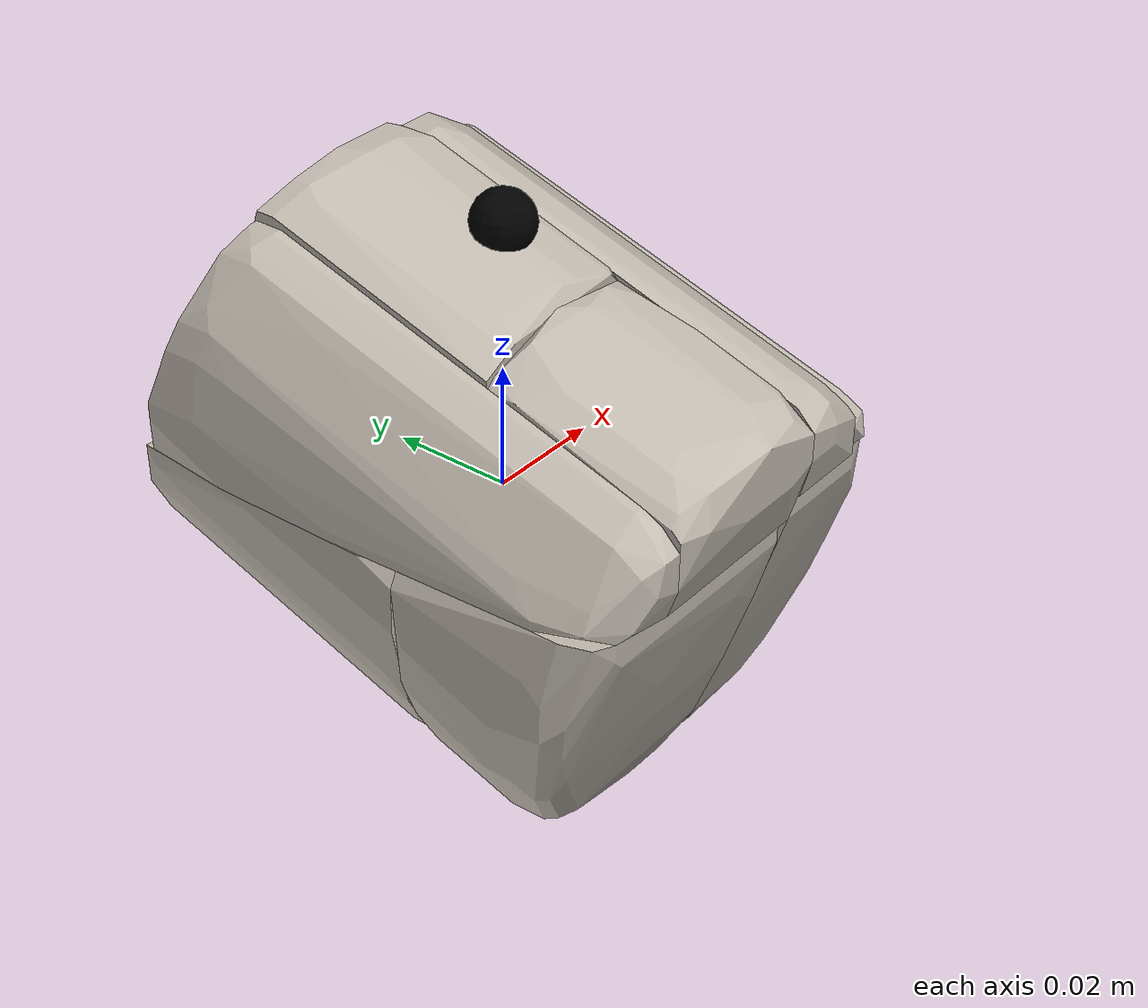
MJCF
<mujoco model="i_cups">
    <compiler angle="radian" />
    <size njmax="500" nconmax="100" />
    <asset>
        <texture type="2d" name="tex-i_cups" file="../textures/i_cups.png" />
        <material name="i_cups" texture="tex-i_cups" texuniform="true" texrepeat="15 15" reflectance="0.7" />
        <mesh name="y22_mug_mesh_1" file="./meshes/Y22_mug_vhacd2_1st.stl" scale="0.7 0.7 0.7"/>
        <mesh name="y22_mug_mesh_2" file="./meshes/Y22_mug_vhacd2_2nd.stl" scale="0.7 0.7 0.7"/>
        <mesh name="y22_mug_mesh_3" file="./meshes/Y22_mug_vhacd2_3rd.stl" scale="0.7 0.7 0.7"/>
        <mesh name="y22_mug_mesh_4" file="./meshes/Y22_mug_vhacd2_4th.stl" scale="0.7 0.7 0.7"/>
        <mesh name="y22_mug_mesh_5" file="./meshes/Y22_mug_vhacd2_5th.stl" scale="0.7 0.7 0.7"/>
        <mesh name="y22_mug_mesh_6" file="./meshes/Y22_mug_vhacd2_6th.stl" scale="0.7 0.7 0.7"/>
        <mesh name="y22_mug_mesh_7" file="./meshes/Y22_mug_vhacd2_7th.stl" scale="0.7 0.7 0.7"/>
        <mesh name="y22_mug_mesh_8" file="./meshes/Y22_mug_vhacd2_8th.stl" scale="0.7 0.7 0.7"/>
        <mesh name="y22_mug_mesh_9" file="./meshes/Y22_mug_vhacd2_9th.stl" scale="0.7 0.7 0.7"/>
        <mesh name="y22_mug_mesh_10" file="./meshes/Y22_mug_vhacd2_10th.stl" scale="0.7 0.7 0.7"/>
        <mesh name="y22_mug_mesh_11" file="./meshes/Y22_mug_vhacd2_11th.stl" scale="0.7 0.7 0.7"/>
        <mesh name="y22_mug_mesh_12" file="./meshes/Y22_mug_vhacd2_12th.stl" scale="0.7 0.7 0.7"/>
        <mesh name="y22_mug_mesh_13" file="./meshes/Y22_mug_vhacd2_13th.stl" scale="0.7 0.7 0.7"/>
        <mesh name="y22_mug_mesh_14" file="./meshes/Y22_mug_vhacd2_14th.stl" scale="0.7 0.7 0.7"/>
    </asset>
    <worldbody>
        <body name="i_cups" pos="0 0 0" quat="0 0 0 1">
            <inertial pos="0 0 0" mass="0" diaginertia="0 0 0" />
            <site name="bottom_site" pos="0 0 -0.0219484" rgba="1 0 0 1" />
            <site name="top_site" pos="0 0 0.0219484" rgba="0 1 0 1" />
            <site name="horizontal_radius_site" pos="0.0274355 0.0274355 0" rgba="0 0 1 1" />
            <site name="vertical_radius_site" pos="0 0 0.0438969" rgba="0 0 0 1" />
            <body name="object" pos="0 0 0" quat="0 0 0 1">
                <inertial pos="0.00028402 0.00576109 -0.0031155" quat="0.901439 0.41072 0.0960687 -0.0974081" mass="0.525" diaginertia="0.000750585 0.000729682 0.000489769" />
                <geom name="y22_mug_1" group="0" type="mesh" condim="4" friction="0.95 0.3 0.1" solref="0.001 1" solimp="0.998 0.998 0.001 0.5 2" material="i_cups" mesh="y22_mug_mesh_1" />
                <geom name="y22_mug_2" group="0" type="mesh" condim="4" friction="0.95 0.3 0.1" solref="0.001 1" solimp="0.998 0.998 0.001 0.5 2" material="i_cups" mesh="y22_mug_mesh_2" />
                <geom name="y22_mug_3" group="0" type="mesh" condim="4" friction="0.95 0.3 0.1" solref="0.001 1" solimp="0.998 0.998 0.001 0.5 2" material="i_cups" mesh="y22_mug_mesh_3" />
                <geom name="y22_mug_4" group="0" type="mesh" condim="4" friction="0.95 0.3 0.1" solref="0.001 1" solimp="0.998 0.998 0.001 0.5 2" material="i_cups" mesh="y22_mug_mesh_4" />
                <geom name="y22_mug_5" group="0" type="mesh" condim="4" friction="0.95 0.3 0.1" solref="0.001 1" solimp="0.998 0.998 0.001 0.5 2" material="i_cups" mesh="y22_mug_mesh_5" />
                <geom name="y22_mug_6" group="0" type="mesh" condim="4" friction="0.95 0.3 0.1" solref="0.001 1" solimp="0.998 0.998 0.001 0.5 2" material="i_cups" mesh="y22_mug_mesh_6" />
                <geom name="y22_mug_7" group="0" type="mesh" condim="4" friction="0.95 0.3 0.1" solref="0.001 1" solimp="0.998 0.998 0.001 0.5 2" material="i_cups" mesh="y22_mug_mesh_7" />
                <geom name="y22_mug_8" group="0" type="mesh" condim="4" friction="0.95 0.3 0.1" solref="0.001 1" solimp="0.998 0.998 0.001 0.5 2" material="i_cups" mesh="y22_mug_mesh_8" />
                <geom name="y22_mug_9" group="0" type="mesh" condim="4" friction="0.95 0.3 0.1" solref="0.001 1" solimp="0.998 0.998 0.001 0.5 2" material="i_cups" mesh="y22_mug_mesh_9" />
                <geom name="y22_mug_10" group="0" type="mesh" condim="4" friction="0.95 0.3 0.1" solref="0.001 1" solimp="0.998 0.998 0.001 0.5 2" material="i_cups" mesh="y22_mug_mesh_10" />
                <geom name="y22_mug_11" group="0" type="mesh" condim="4" friction="0.95 0.3 0.1" solref="0.001 1" solimp="0.998 0.998 0.001 0.5 2" material="i_cups" mesh="y22_mug_mesh_11" />
                <geom name="y22_mug_12" group="0" type="mesh" condim="4" friction="0.95 0.3 0.1" solref="0.001 1" solimp="0.998 0.998 0.001 0.5 2" material="i_cups" mesh="y22_mug_mesh_12" />
                <geom name="y22_mug_13" group="0" type="mesh" condim="4" friction="0.95 0.3 0.1" solref="0.001 1" solimp="0.998 0.998 0.001 0.5 2" material="i_cups" mesh="y22_mug_mesh_13" />
                <geom name="y22_mug_14" group="0" type="mesh" condim="4" friction="0.95 0.3 0.1" solref="0.001 1" solimp="0.998 0.998 0.001 0.5 2" material="i_cups" mesh="y22_mug_mesh_14" />
            </body>
        </body>
    </worldbody>
</mujoco>
